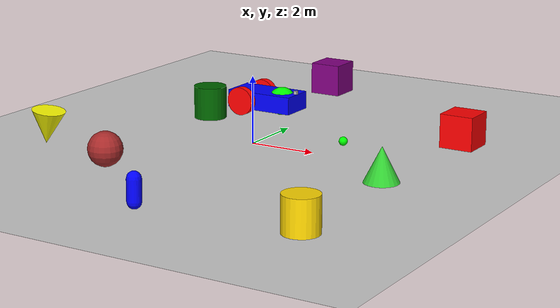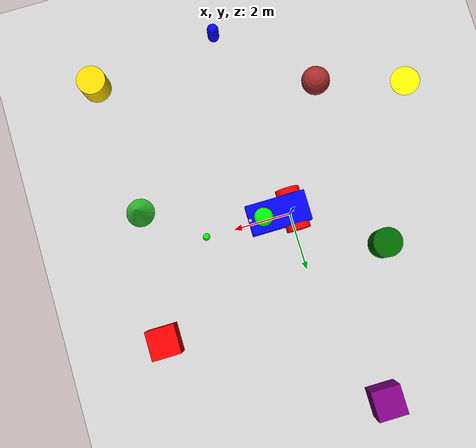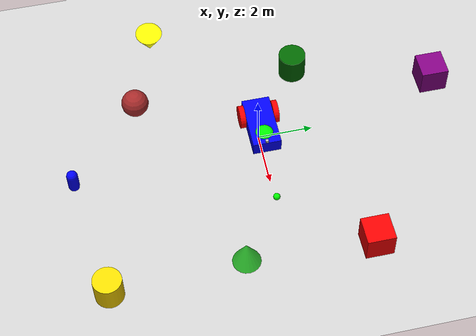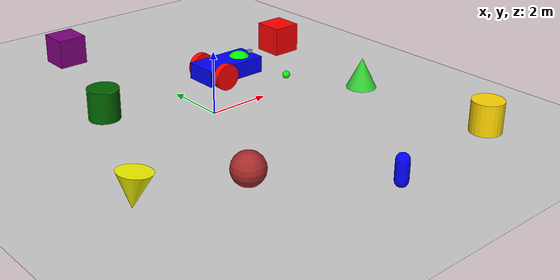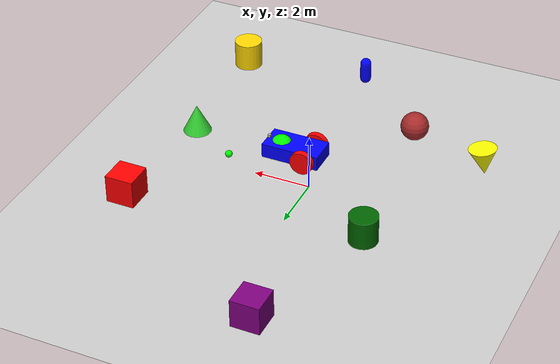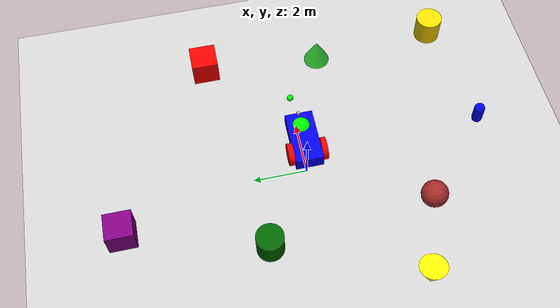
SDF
<?xml version="1.0" ?>
<sdf version='1.10'>
  <world name='camera_sensor'>
    <physics name='1ms' type='ignored'>
      <max_step_size>0.001</max_step_size>
      <real_time_factor>1</real_time_factor>
      <real_time_update_rate>1000</real_time_update_rate>
    </physics>
    <plugin name='gz::sim::systems::Physics' filename='gz-sim-physics-system'/>
    <plugin name='gz::sim::systems::Sensors' filename='gz-sim-sensors-system'>
      <render_engine>ogre2</render_engine>
    </plugin>
    <plugin name='gz::sim::systems::UserCommands' filename='gz-sim-user-commands-system'/>
    <plugin name='gz::sim::systems::SceneBroadcaster' filename='gz-sim-scene-broadcaster-system'/>
    <scene>
      <ambient>1 1 1 1</ambient>
      <background>0.800000012 0.800000012 0.800000012 1</background>
      <grid>true</grid>
      <shadows>true</shadows>
    </scene>
    <gui fullscreen='false'>
      <plugin name='3D View' filename='MinimalScene'>
        <gz-gui>
          <title>3D View</title>
          <property type='bool' key='showTitleBar'>false</property>
          <property type='string' key='state'>docked</property>
        </gz-gui>
        <engine>ogre2</engine>
        <scene>scene</scene>
        <ambient_light>0.4 0.4 0.4</ambient_light>
        <background_color>0.8 0.8 0.8</background_color>
        <camera_pose>-6 0 6 0 0.5 0</camera_pose>
      </plugin>
      <plugin name='Entity context menu' filename='EntityContextMenuPlugin'>
        <gz-gui>
          <property key='state' type='string'>floating</property>
          <property key='width' type='double'>5</property>
          <property key='height' type='double'>5</property>
          <property key='showTitleBar' type='bool'>false</property>
        </gz-gui>
      </plugin>
      <plugin name='Scene Manager' filename='GzSceneManager'>
        <gz-gui>
          <property key='resizable' type='bool'>false</property>
          <property key='width' type='double'>5</property>
          <property key='height' type='double'>5</property>
          <property key='state' type='string'>floating</property>
          <property key='showTitleBar' type='bool'>false</property>
        </gz-gui>
      </plugin>
      <plugin name='Interactive view control' filename='InteractiveViewControl'>
        <gz-gui>
          <property key='resizable' type='bool'>false</property>
          <property key='width' type='double'>5</property>
          <property key='height' type='double'>5</property>
          <property key='state' type='string'>floating</property>
          <property key='showTitleBar' type='bool'>false</property>
        </gz-gui>
      </plugin>
      <plugin name='Camera Tracking' filename='CameraTracking'>
        <gz-gui>
          <property key='resizable' type='bool'>false</property>
          <property key='width' type='double'>5</property>
          <property key='height' type='double'>5</property>
          <property key='state' type='string'>floating</property>
          <property key='showTitleBar' type='bool'>false</property>
        </gz-gui>
      </plugin>
      <plugin name='World control' filename='WorldControl'>
        <gz-gui>
          <title>World control</title>
          <property type='bool' key='showTitleBar'>false</property>
          <property type='bool' key='resizable'>false</property>
          <property type='double' key='height'>72</property>
          <property type='double' key='z'>1</property>
          <property type='string' key='state'>floating</property>
          <anchors target='3D View'>
            <line own='left' target='left'/>
            <line own='bottom' target='bottom'/>
          </anchors>
        </gz-gui>
        <play_pause>true</play_pause>
        <step>true</step>
        <start_paused>true</start_paused>
        <use_event>true</use_event>
      </plugin>
      <plugin name='World stats' filename='WorldStats'>
        <gz-gui>
          <title>World stats</title>
          <property type='bool' key='showTitleBar'>false</property>
          <property type='bool' key='resizable'>false</property>
          <property type='double' key='height'>110</property>
          <property type='double' key='width'>290</property>
          <property type='double' key='z'>1</property>
          <property type='string' key='state'>floating</property>
          <anchors target='3D View'>
            <line own='right' target='right'/>
            <line own='bottom' target='bottom'/>
          </anchors>
        </gz-gui>
        <sim_time>true</sim_time>
        <real_time>true</real_time>
        <real_time_factor>true</real_time_factor>
        <iterations>true</iterations>
      </plugin>
      <plugin name='Image Display' filename='ImageDisplay'>
        <gz-gui>
          <property key='state' type='string'>docked</property>
        </gz-gui>
        <topic>camera</topic>
      </plugin>
      <plugin name='Component inspector' filename='ComponentInspector'>
        <gz-gui>
          <property type='string' key='state'>docked</property>
        </gz-gui>
      </plugin>
      <plugin name='Entity tree' filename='EntityTree'>
        <gz-gui>
          <property type='string' key='state'>docked</property>
        </gz-gui>
      </plugin>
    </gui>
    <gravity>0 0 -9.8000000000000007</gravity>
    <magnetic_field>5.5644999999999998e-06 2.2875799999999999e-05 -4.2388400000000002e-05</magnetic_field>
    <atmosphere type='adiabatic'/>
    <model name='ground_plane'>
      <static>true</static>
      <link name='link'>
        <collision name='collision'>
          <geometry>
            <plane>
              <normal>0 0 1</normal>
              <size>100 100</size>
            </plane>
          </geometry>
          <surface>
            <friction>
              <ode/>
            </friction>
            <bounce/>
            <contact/>
          </surface>
        </collision>
        <visual name='visual'>
          <geometry>
            <plane>
              <normal>0 0 1</normal>
              <size>100 100</size>
            </plane>
          </geometry>
          <material>
            <ambient>0.800000012 0.800000012 0.800000012 1</ambient>
            <diffuse>0.800000012 0.800000012 0.800000012 1</diffuse>
            <specular>0.800000012 0.800000012 0.800000012 1</specular>
          </material>
        </visual>
        <pose>0 0 0 0 0 0</pose>
        <inertial>
          <pose>0 0 0 0 0 0</pose>
          <mass>1</mass>
          <inertia>
            <ixx>1</ixx>
            <ixy>0</ixy>
            <ixz>0</ixz>
            <iyy>1</iyy>
            <iyz>0</iyz>
            <izz>1</izz>
          </inertia>
        </inertial>
        <enable_wind>false</enable_wind>
      </link>
      <pose>0 0 0 0 0 0</pose>
      <self_collide>false</self_collide>
    </model>
    <model name='vehicle_blue' canonical_link='chassis'>
        	<pose relative_to='world'>0 0 0 0 0 0</pose>
        	<link name='chassis'>
        		<pose relative_to='__model__'>0.5 0 1.4 0 0 0</pose>
			    <inertial>
				    <mass>1.14395</mass>
				    <inertia>
				        <ixx>0.095329</ixx>
				        <ixy>0</ixy>
				        <ixz>0</ixz>
				        <iyy>0.381317</iyy>
				        <iyz>0</iyz>
				        <izz>0.476646</izz>
	           		</inertia>
	        	</inertial>
	    		<visual name='visual'>
				    <geometry>
		        		<box>
		            		<size>2.0 1.0 0.5</size>
		       			</box>
				    </geometry>
				    <material>
				        <ambient>0.0 0.0 1.0 1</ambient>
				        <diffuse>0.0 0.0 1.0 1</diffuse>
				        <specular>0.0 0.0 1.0 1</specular>
				    </material>
	    		</visual>
			    <collision name='collision'>
			        <geometry>
				    <box>
				        <size>2.0 1.0 0.5</size>
				    </box>
			        </geometry>
			    </collision>
    		</link>

    		<link name='camera'>
                <pose relative_to="chassis">0.95 0 0.3 0 0 0</pose>
                <inertial>
                  <mass>0.10000000000000001</mass>
                  <inertia>
                    <ixx>0.00016666700000000001</ixx>
                    <iyy>0.00016666700000000001</iyy>
                    <izz>0.00016666700000000001</izz>
                    <ixy>0</ixy>
                    <ixz>0</ixz>
                    <iyz>0</iyz>
                  </inertia>
                  <pose>0 0 0 0 0 0</pose>
                </inertial>
                <collision name='collision'>
                  <geometry>
                    <box>
                      <size>0.10000000000000001 0.10000000000000001 0.10000000000000001</size>
                    </box>
                  </geometry>
                  <surface>
                    <friction>
                      <ode/>
                    </friction>
                    <bounce/>
                    <contact/>
                  </surface>
                </collision>
                <visual name='visual'>
                  <geometry>
                    <box>
                      <size>0.10000000000000001 0.10000000000000001 0.10000000000000001</size>
                    </box>
                  </geometry>
                </visual>
                <sensor name='camera' type='camera'>
                  <pose>0 0 0 0 0 0</pose>
                  <topic>camera/image</topic>
                  <update_rate>30</update_rate>
                  <enable_metrics>false</enable_metrics>
                  <camera>
                    <pose>0 0 0 0 0 0</pose>
                    <horizontal_fov>1.0469999999999999</horizontal_fov>
                    <image>
                      <width>320</width>
                      <height>240</height>
                      <format>RGB_INT8</format>
                      <anti_aliasing>4</anti_aliasing>
                    </image>
                    <camera_info_topic>camera/info</camera_info_topic>
                    <trigger_topic></trigger_topic>
                    <triggered>false</triggered>
                    <clip>
                      <near>0.10000000000000001</near>
                      <far>100</far>
                    </clip>
                    <save enabled='false'>
                      <path>__default__</path>
                    </save>
                    <visibility_mask>4294967295</visibility_mask>
                    <noise>
                      <type>none</type>
                      <mean>0</mean>
                      <stddev>0</stddev>
                    </noise>
                    <distortion>
                      <k1>0</k1>
                      <k2>0</k2>
                      <k3>0</k3>
                      <p1>0</p1>
                      <p2>0</p2>
                      <center>0.5 0.5</center>
                    </distortion>
                    <lens>
                      <type>stereographic</type>
                      <scale_to_hfov>true</scale_to_hfov>
                      <cutoff_angle>1.5707963267948966</cutoff_angle>
                      <env_texture_size>256</env_texture_size>
                    </lens>
                    <optical_frame_id></optical_frame_id>
                  </camera>
                </sensor>
                <enable_wind>false</enable_wind>
            </link>

    		<link name='left_wheel'>
		   	<pose relative_to="chassis">-0.5 0.6 0 -1.5707 0 0</pose>
		    	<inertial>
				<mass>1</mass>
				<inertia>
				    <ixx>0.043333</ixx>
				    <ixy>0</ixy>
				    <ixz>0</ixz>
				    <iyy>0.043333</iyy>
				    <iyz>0</iyz>
				    <izz>0.08</izz>
				</inertia>
		    	</inertial>
		    	<visual name='visual'>
				<geometry>
				    <cylinder>
					<radius>0.4</radius>
					<length>0.2</length>
				    </cylinder>
				</geometry>
				<material>
				    <ambient>1.0 0.0 0.0 1</ambient>
				    <diffuse>1.0 0.0 0.0 1</diffuse>
				    <specular>1.0 0.0 0.0 1</specular>
				</material>
		    	</visual>
		    	<collision name='collision'>
				<geometry>
				    <cylinder>
					<radius>0.4</radius>
					<length>0.2</length>
				    </cylinder>
				</geometry>
		    	</collision>
		    </link>
		    <link name='right_wheel'>
		    	<pose relative_to="chassis">-0.5 -0.6 0 -1.5707 0 0</pose>
		    	<inertial>
				<mass>1</mass>
				<inertia>
				    <ixx>0.043333</ixx>
				    <ixy>0</ixy>
				    <ixz>0</ixz>
				    <iyy>0.043333</iyy>
				    <iyz>0</iyz>
				    <izz>0.08</izz>
				</inertia>
		   	</inertial>
		    	<visual name='visual'>
				<geometry>
				    	<cylinder>
						<radius>0.4</radius>
						<length>0.2</length>
				    	</cylinder>
				</geometry>
				<material>
				    <ambient>1.0 0.0 0.0 1</ambient>
				    <diffuse>1.0 0.0 0.0 1</diffuse>
				    <specular>1.0 0.0 0.0 1</specular>
				</material>
		    	</visual>
		    	<collision name='collision'>
				<geometry>
				    <cylinder>
					<radius>0.4</radius>
					<length>0.2</length>
				    </cylinder>
				</geometry>
		    	</collision>
		    </link>
		    <frame name="caster_frame" attached_to='chassis'>
    			<pose>0.5 0 0 0 0 0</pose>
		    </frame>
		    <link name='caster'>
			    <pose relative_to='caster_frame'/>
		    <inertial>
				<mass>1</mass>
				<inertia>
				    <ixx>0.016</ixx>
				    <ixy>0</ixy>
				    <ixz>0</ixz>
				    <iyy>0.016</iyy>
				    <iyz>0</iyz>
				    <izz>0.016</izz>
				</inertia>
		    </inertial>
			<visual name='visual'>
				<geometry>
				    <sphere>
					<radius>0.4</radius>
				    </sphere>
				</geometry>
				<material>
				    <ambient>0.0 1 0.0 1</ambient>
				    <diffuse>0.0 1 0.0 1</diffuse>
				    <specular>0.0 1 0.0 1</specular>
				</material>
		    </visual>
	    	<collision name='collision'>
			<geometry>
	    			<sphere>
					<radius>0.4</radius>
		    		</sphere>
			</geometry>
	    	</collision>
		    </link>

		    <joint name='camera_joint' type='fixed'>
    			<pose relative_to='camera'/>
    				<parent>chassis</parent>
    				<child>camera</child>
		    </joint>

		    <joint name='left_wheel_joint' type='revolute'>
    			<pose relative_to='left_wheel'/>
    				<parent>chassis</parent>
    				<child>left_wheel</child>
    			<axis>
        			<xyz expressed_in='__model__'>0 1 0</xyz>
        			<limit>
            				<lower>-1.79769e+308</lower>
            				<upper>1.79769e+308</upper>
        			</limit>
    			</axis>
		    </joint>
		    <joint name='right_wheel_joint' type='revolute'>
    			<pose relative_to='right_wheel'/>
    				<parent>chassis</parent>
    				<child>right_wheel</child>
    			<axis>
        			<xyz expressed_in='__model__'>0 1 0</xyz>
				<limit>
				    <lower>-1.79769e+308</lower>
				    <upper>1.79769e+308</upper>
				</limit>
    			</axis>
		    </joint>
		    <joint name='caster_wheel' type='ball'>
			    <parent>chassis</parent>
		    	    <child>caster</child>
		    </joint>

		    <plugin
                filename="gz-sim-diff-drive-system"
                name="gz::sim::systems::DiffDrive">
                <left_joint>left_wheel_joint</left_joint>
                <right_joint>right_wheel_joint</right_joint>
                <wheel_separation>1.2</wheel_separation>
                <wheel_radius>0.4</wheel_radius>
                <odom_publish_frequency>1</odom_publish_frequency>
                <topic>cmd_vel</topic>
            </plugin>
	    </model>
    <model name='sphere'>
      <static>true</static>
      <pose>3 0 0.5 0 0 0</pose>
      <link name='sphere_link'>
        <collision name='sphere_collision'>
          <geometry>
            <sphere>
              <radius>0.125</radius>
            </sphere>
          </geometry>
          <surface>
            <friction>
              <ode/>
            </friction>
            <bounce/>
            <contact/>
          </surface>
        </collision>
        <visual name='sphere_visual'>
          <geometry>
            <sphere>
              <radius>0.125</radius>
            </sphere>
          </geometry>
          <material>
            <ambient>0 1 0 1</ambient>
            <diffuse>0 1 0 1</diffuse>
            <specular>0 1 0 1</specular>
          </material>
          <cast_shadows>false</cast_shadows>
        </visual>
        <pose>0 0 0 0 0 0</pose>
        <inertial>
          <pose>0 0 0 0 0 0</pose>
          <mass>1</mass>
          <inertia>
            <ixx>1</ixx>
            <ixy>0</ixy>
            <ixz>0</ixz>
            <iyy>1</iyy>
            <iyz>0</iyz>
            <izz>1</izz>
          </inertia>
        </inertial>
        <enable_wind>false</enable_wind>
      </link>
      <self_collide>false</self_collide>
    </model>

    <model name='box'>
      <pose>5.303773845689248 2.9733357158176648 0.5 0 0 0</pose>
      <link name='box_link'>
        <inertial>
          <inertia>
            <ixx>0.16666</ixx>
            <ixy>0</ixy>
            <ixz>0</ixz>
            <iyy>0.16666</iyy>
            <iyz>0</iyz>
            <izz>0.16666</izz>
          </inertia>
          <mass>1</mass>
          <pose>0 0 0 0 0 0</pose>
        </inertial>
        <collision name='box_collision'>
          <geometry>
            <box>
              <size>1 1 1</size>
            </box>
          </geometry>
          <surface>
            <friction>
              <ode/>
            </friction>
            <bounce/>
            <contact/>
          </surface>
        </collision>
        <visual name='box_visual'>
          <geometry>
            <box>
              <size>1 1 1</size>
            </box>
          </geometry>
          <material>
            <ambient>0.300000012 0.300000012 0.300000012 1</ambient>
            <diffuse>1 0 0 1</diffuse>
            <specular>1 1 1 1</specular>
          </material>
        </visual>
        <pose>0 0 0 0 0 0</pose>
        <enable_wind>false</enable_wind>
      </link>
      <static>false</static>
      <self_collide>false</self_collide>
    </model>

    <model name='box_0'>
      <pose>-1.2213616622836767 6.9011320439619022 0.5 0 0 0</pose>
      <link name='box_link'>
        <inertial>
          <inertia>
            <ixx>0.16666</ixx>
            <ixy>0</ixy>
            <ixz>0</ixz>
            <iyy>0.16666</iyy>
            <iyz>0</iyz>
            <izz>0.16666</izz>
          </inertia>
          <mass>1</mass>
          <pose>0 0 0 0 0 0</pose>
        </inertial>
        <collision name='box_collision'>
          <geometry>
            <box>
              <size>1 1 1</size>
            </box>
          </geometry>
          <surface>
            <friction>
              <ode/>
            </friction>
            <bounce/>
            <contact/>
          </surface>
        </collision>
        <visual name='box_visual'>
          <geometry>
            <box>
              <size>1 1 1</size>
            </box>
          </geometry>
          <material>
            <ambient>0.300000012 0.300000012 0.300000012 1</ambient>
            <diffuse>0.502 0 0.502 1</diffuse>
            <specular>1 1 1 1</specular>
          </material>
        </visual>
        <pose>0 0 0 0 0 0</pose>
        <enable_wind>false</enable_wind>
      </link>
      <static>false</static>
      <self_collide>false</self_collide>
    </model>
    <model name='cylinder'>
      <pose>5.2920135911802433 -6.2286735610702078 0.5 0 0 0</pose>
      <link name='cylinder_link'>
        <inertial>
          <inertia>
            <ixx>0.14580000000000001</ixx>
            <ixy>0</ixy>
            <ixz>0</ixz>
            <iyy>0.14580000000000001</iyy>
            <iyz>0</iyz>
            <izz>0.125</izz>
          </inertia>
          <mass>1</mass>
          <pose>0 0 0 0 0 0</pose>
        </inertial>
        <collision name='cylinder_collision'>
          <geometry>
            <cylinder>
              <radius>0.5</radius>
              <length>1</length>
            </cylinder>
          </geometry>
          <surface>
            <friction>
              <ode/>
            </friction>
            <bounce/>
            <contact/>
          </surface>
        </collision>
        <visual name='cylinder_visual'>
          <geometry>
            <cylinder>
              <radius>0.5</radius>
              <length>1</length>
            </cylinder>
          </geometry>
          <material>
            <ambient>0.300000012 0.300000012 0.300000012 1</ambient>
            <diffuse>1 0.843 0 1</diffuse>
            <specular>1 1 1 1</specular>
          </material>
        </visual>
        <pose>0 0 0 0 0 0</pose>
        <enable_wind>false</enable_wind>
      </link>
      <static>false</static>
      <self_collide>false</self_collide>
    </model>
    <model name='cylinder_0'>
      <pose>-2.7614545412003348 1.909873230732557 0.5 0 0 0</pose>
      <link name='cylinder_link'>
        <inertial>
          <inertia>
            <ixx>0.14580000000000001</ixx>
            <ixy>0</ixy>
            <ixz>0</ixz>
            <iyy>0.14580000000000001</iyy>
            <iyz>0</iyz>
            <izz>0.125</izz>
          </inertia>
          <mass>1</mass>
          <pose>0 0 0 0 0 0</pose>
        </inertial>
        <collision name='cylinder_collision'>
          <geometry>
            <cylinder>
              <radius>0.5</radius>
              <length>1</length>
            </cylinder>
          </geometry>
          <surface>
            <friction>
              <ode/>
            </friction>
            <bounce/>
            <contact/>
          </surface>
        </collision>
        <visual name='cylinder_visual'>
          <geometry>
            <cylinder>
              <radius>0.5</radius>
              <length>1</length>
            </cylinder>
          </geometry>
          <material>
            <ambient>0.300000012 0.300000012 0.300000012 1</ambient>
            <diffuse>0 0.392 0 1</diffuse>
            <specular>1 1 1 1</specular>
          </material>
        </visual>
        <pose>0 0 0 0 0 0</pose>
        <enable_wind>false</enable_wind>
      </link>
      <static>false</static>
      <self_collide>false</self_collide>
    </model>
    <model name='cone'>
      <pose>4.9985849877073587 -1.5015568135004624 0.5 0 0 0</pose>
      <link name='cone_link'>
        <inertial>
          <inertia>
            <ixx>0.074999999999999997</ixx>
            <ixy>0</ixy>
            <ixz>0</ixz>
            <iyy>0.074999999999999997</iyy>
            <iyz>0</iyz>
            <izz>0.074999999999999997</izz>
          </inertia>
          <mass>1</mass>
          <pose>0 0 0 0 0 0</pose>
        </inertial>
        <collision name='cone_collision'>
          <geometry>
            <cone>
              <radius>0.5</radius>
              <length>1</length>
            </cone>
          </geometry>
          <surface>
            <friction>
              <ode/>
            </friction>
            <bounce/>
            <contact/>
          </surface>
        </collision>
        <visual name='cone_visual'>
          <geometry>
            <cone>
              <radius>0.5</radius>
              <length>1</length>
            </cone>
          </geometry>
          <material>
            <ambient>0.300000012 0.300000012 0.300000012 1</ambient>
            <diffuse>0.196 0.804 0.196 1</diffuse>
            <specular>1 1 1 1</specular>
          </material>
        </visual>
        <pose>0 0 0 0 0 0</pose>
        <enable_wind>false</enable_wind>
      </link>
      <static>false</static>
      <self_collide>false</self_collide>
    </model>
    <model name='cone_0'>
      <pose>-5.0485601425170898 -3.1755099296569824 0.5 3.1415926535897931 -0.13380102235278782 3.1415926535897931</pose>
      <link name='cone_link'>
        <inertial>
          <inertia>
            <ixx>0.074999999999999997</ixx>
            <ixy>0</ixy>
            <ixz>0</ixz>
            <iyy>0.074999999999999997</iyy>
            <iyz>0</iyz>
            <izz>0.074999999999999997</izz>
          </inertia>
          <mass>1</mass>
          <pose>0 0 0 0 0 0</pose>
        </inertial>
        <collision name='cone_collision'>
          <geometry>
            <cone>
              <radius>0.5</radius>
              <length>1</length>
            </cone>
          </geometry>
          <surface>
            <friction>
              <ode/>
            </friction>
            <bounce/>
            <contact/>
          </surface>
        </collision>
        <visual name='cone_visual'>
          <geometry>
            <cone>
              <radius>0.5</radius>
              <length>1</length>
            </cone>
          </geometry>
          <material>
            <ambient>0.300000012 0.300000012 0.300000012 1</ambient>
            <diffuse>1 1 0 1</diffuse>
            <specular>1 1 1 1</specular>
          </material>
        </visual>
        <pose>0 0 0 0 0 0</pose>
        <enable_wind>false</enable_wind>
      </link>
      <static>false</static>
      <self_collide>false</self_collide>
    </model>
    <model name='capsule'>
      <pose>0.79949797999898031 -6.8391641687316707 0.5 0 0 0</pose>
      <link name='capsule_link'>
        <inertial>
          <inertia>
            <ixx>0.074153999999999998</ixx>
            <ixy>0</ixy>
            <ixz>0</ixz>
            <iyy>0.074153999999999998</iyy>
            <iyz>0</iyz>
            <izz>0.018769000000000001</izz>
          </inertia>
          <mass>1</mass>
          <pose>0 0 0 0 0 0</pose>
        </inertial>
        <collision name='capsule_collision'>
          <geometry>
            <capsule>
              <radius>0.20000000000000001</radius>
              <length>0.59999999999999998</length>
            </capsule>
          </geometry>
          <surface>
            <friction>
              <ode/>
            </friction>
            <bounce/>
            <contact/>
          </surface>
        </collision>
        <visual name='capsule_visual'>
          <geometry>
            <capsule>
              <radius>0.20000000000000001</radius>
              <length>0.59999999999999998</length>
            </capsule>
          </geometry>
          <material>
            <ambient>0.300000012 0.300000012 0.300000012 1</ambient>
            <diffuse>0 0 1 1</diffuse>
            <specular>1 1 1 1</specular>
          </material>
        </visual>
        <pose>0 0 0 0 0 0</pose>
        <enable_wind>false</enable_wind>
      </link>
      <static>false</static>
      <self_collide>false</self_collide>
    </model>
    <model name='sphere_0'>
      <pose>-2.1623632003532443 -4.1815079595348639 0.5 0 0 0</pose>
      <link name='sphere_0_link'>
        <inertial>
          <inertia>
            <ixx>0.10000000000000001</ixx>
            <ixy>0</ixy>
            <ixz>0</ixz>
            <iyy>0.10000000000000001</iyy>
            <iyz>0</iyz>
            <izz>0.10000000000000001</izz>
          </inertia>
          <mass>1</mass>
          <pose>0 0 0 0 0 0</pose>
        </inertial>
        <collision name='sphere_0_collision'>
          <geometry>
            <sphere>
              <radius>0.5</radius>
            </sphere>
          </geometry>
          <surface>
            <friction>
              <ode/>
            </friction>
            <bounce/>
            <contact/>
          </surface>
        </collision>
        <visual name='sphere_0_visual'>
          <geometry>
            <sphere>
              <radius>0.5</radius>
            </sphere>
          </geometry>
          <material>
            <ambient>0.300000012 0.300000012 0.300000012 1</ambient>
            <diffuse>0.647 0.165 0.165 1</diffuse>
            <specular>1 1 1 1</specular>
          </material>
        </visual>
        <pose>0 0 0 0 0 0</pose>
        <enable_wind>false</enable_wind>
      </link>
      <static>false</static>
      <self_collide>false</self_collide>
    </model>

    <light name='sun' type='directional'>
      <pose>0 0 10 0 0 0</pose>
      <cast_shadows>true</cast_shadows>
      <intensity>1</intensity>
      <direction>-0.5 0.10000000000000001 -0.90000000000000002</direction>
      <diffuse>0.800000012 0.800000012 0.800000012 1</diffuse>
      <specular>0.800000012 0.800000012 0.800000012 1</specular>
      <attenuation>
        <range>1000</range>
        <linear>0.0099999997764825821</linear>
        <constant>0.89999997615814209</constant>
        <quadratic>0.0010000000474974513</quadratic>
      </attenuation>
      <spot>
        <inner_angle>0</inner_angle>
        <outer_angle>0</outer_angle>
        <falloff>0</falloff>
      </spot>
    </light>

    <plugin filename="gz-sim-triggered-publisher-system"
            name="gz::sim::systems::TriggeredPublisher">
        <input type="gz.msgs.Int32" topic="/keyboard/keypress">
            <match field="data">16777235</match>
        </input>
        <output type="gz.msgs.Twist" topic="/cmd_vel">
            linear: {x: 5}, angular: {z: 0.0}
        </output>
    </plugin>

    <plugin filename="gz-sim-triggered-publisher-system"
            name="gz::sim::systems::TriggeredPublisher">
        <input type="gz.msgs.Int32" topic="/keyboard/keypress">
            <match field="data">16777237</match>
        </input>
        <output type="gz.msgs.Twist" topic="/cmd_vel">
            linear: {x: -5}, angular: {z: 0.0}
        </output>
    </plugin>

	    <plugin filename="gz-sim-triggered-publisher-system"
            name="gz::sim::systems::TriggeredPublisher">
        <input type="gz.msgs.Int32" topic="/keyboard/keypress">
            <match field="data">16777236</match>
        </input>
        <output type="gz.msgs.Twist" topic="/cmd_vel">
            linear: {x: 0.0}, angular: {z: -2}
        </output>
    </plugin>

        <plugin filename="gz-sim-triggered-publisher-system"
            name="gz::sim::systems::TriggeredPublisher">
        <input type="gz.msgs.Int32" topic="/keyboard/keypress">
            <match field="data">16777234</match>
        </input>
        <output type="gz.msgs.Twist" topic="/cmd_vel">
            linear: {x: 0.0}, angular: {z: 2}
        </output>
    </plugin>

  </world>
</sdf>
